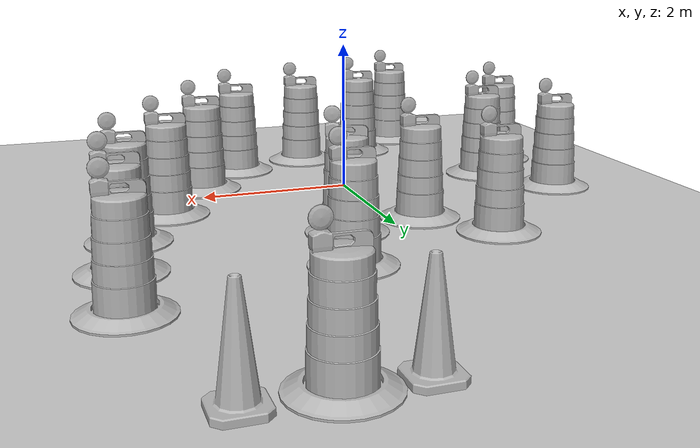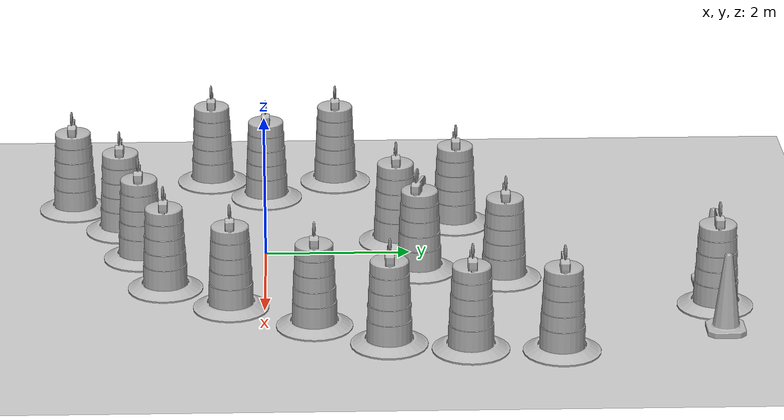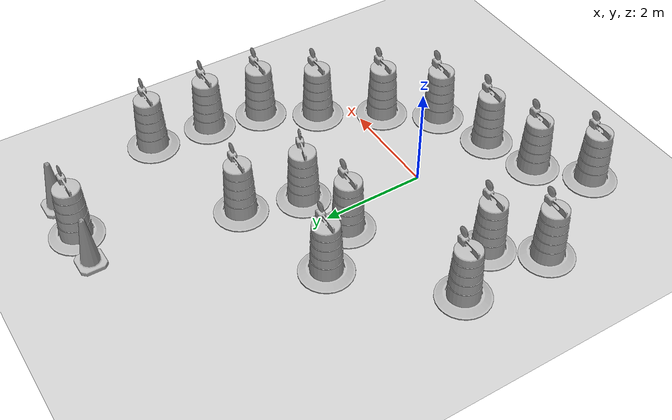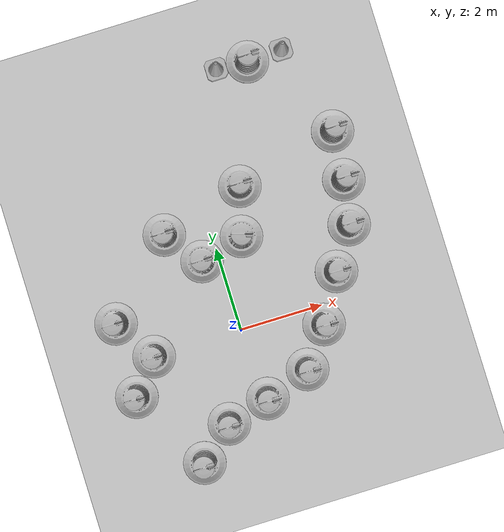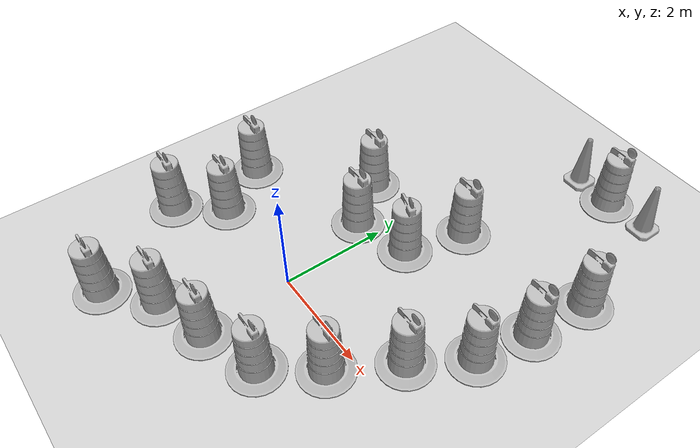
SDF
<sdf version="1.7">
 <world name="default">
  <light name="sun" type="directional">
   <pose>0 0 10 0 -0 0</pose>
   <diffuse>0.8 0.8 0.8 1</diffuse>
   <specular>0.2 0.2 0.2 1</specular>
   <attenuation>
    <range>1000</range>
    <constant>0.9</constant>
    <linear>0.01</linear>
    <quadratic>0.001</quadratic>
   </attenuation>
   <direction>-0.5 0.1 -0.9</direction>
   <spot><inner_angle>0</inner_angle><outer_angle>0</outer_angle><falloff>0</falloff></spot>
  </light>
  <model name="ground_plane">
   <static>1</static>
   <link name="link">
    <collision name="collision">
     <geometry><plane><normal>0 0 1</normal><size>100 100</size></plane></geometry>
     <surface>
      <contact><collide_bitmask>65535</collide_bitmask></contact>
      <friction><ode><mu>100</mu><mu2>50</mu2></ode></friction>
     </surface>
    </collision>
    <visual name="visual">
     <cast_shadows>0</cast_shadows>
     <geometry><plane><normal>0 0 1</normal><size>100 100</size></plane></geometry>
     <material>
      <script><uri>file://media/materials/scripts/gazebo.material</uri><name>Gazebo/Grey</name></script>
     </material>
    </visual>
   </link>
  </model>
  <gravity>0 0 -9.8</gravity>
  <magnetic_field>6e-06 2.3e-05 -4.2e-05</magnetic_field>
  <atmosphere type="adiabatic"/>
  <physics type="ode">
   <max_step_size>0.001</max_step_size>
   <real_time_factor>1</real_time_factor>
   <real_time_update_rate>1000</real_time_update_rate>
  </physics>
  <scene><ambient>0.4 0.4 0.4 1</ambient><background>0.7 0.7 0.7 1</background><shadows>1</shadows></scene>
  <spherical_coordinates>
   <surface_model>EARTH_WGS84</surface_model>
   <latitude_deg>0</latitude_deg>
   <longitude_deg>0</longitude_deg>
   <elevation>0</elevation>
   <heading_deg>0</heading_deg>
  </spherical_coordinates>
  <model name="Construction Barrel">
   <link name="link">
    <inertial>
     <pose>0 0 0.4 0 -0 0</pose>
     <mass>500</mass>
     <inertia><ixx>51.2096</ixx><iyy>51.2096</iyy><izz>25</izz><ixy>0</ixy><ixz>0</ixz><iyz>0</iyz></inertia>
    </inertial>
    <collision name="collision">
     <geometry><mesh><uri>model://construction_barrel/meshes/construction_barrel.dae</uri></mesh></geometry>
    </collision>
    <visual name="visual">
     <geometry><mesh><uri>model://construction_barrel/meshes/construction_barrel.dae</uri></mesh></geometry>
    </visual>
   </link>
   <pose>-0.913405 -2.02924 0 0 0 -4.4e-05</pose>
  </model>
  <model name="Construction Barrel_0">
   <link name="link">
    <inertial>
     <pose>0 0 0.4 0 -0 0</pose>
     <mass>500</mass>
     <inertia><ixx>51.2096</ixx><iyy>51.2096</iyy><izz>25</izz><ixy>0</ixy><ixz>0</ixz><iyz>0</iyz></inertia>
    </inertial>
    <collision name="collision">
     <geometry><mesh><uri>model://construction_barrel/meshes/construction_barrel.dae</uri></mesh></geometry>
    </collision>
    <visual name="visual">
     <geometry><mesh><uri>model://construction_barrel/meshes/construction_barrel.dae</uri></mesh></geometry>
    </visual>
   </link>
   <pose>0.126898 -1.72801 -0 0 -0 -4e-05</pose>
  </model>
  <model name="Construction Barrel_1">
   <link name="link">
    <inertial>
     <pose>0 0 0.4 0 -0 0</pose>
     <mass>500</mass>
     <inertia><ixx>51.2096</ixx><iyy>51.2096</iyy><izz>25</izz><ixy>0</ixy><ixz>0</ixz><iyz>0</iyz></inertia>
    </inertial>
    <collision name="collision">
     <geometry><mesh><uri>model://construction_barrel/meshes/construction_barrel.dae</uri></mesh></geometry>
    </collision>
    <visual name="visual">
     <geometry><mesh><uri>model://construction_barrel/meshes/construction_barrel.dae</uri></mesh></geometry>
    </visual>
   </link>
   <pose>1.22444 -1.35036 -0 0 -0 -3.6e-05</pose>
  </model>
  <model name="Construction Barrel_2">
   <link name="link">
    <inertial>
     <pose>0 0 0.4 0 -0 0</pose>
     <mass>500</mass>
     <inertia><ixx>51.2096</ixx><iyy>51.2096</iyy><izz>25</izz><ixy>0</ixy><ixz>0</ixz><iyz>0</iyz></inertia>
    </inertial>
    <collision name="collision">
     <geometry><mesh><uri>model://construction_barrel/meshes/construction_barrel.dae</uri></mesh></geometry>
    </collision>
    <visual name="visual">
     <geometry><mesh><uri>model://construction_barrel/meshes/construction_barrel.dae</uri></mesh></geometry>
    </visual>
   </link>
   <pose>1.90897 -0.453436 0 0 0 -4e-05</pose>
  </model>
  <model name="Construction Barrel_3">
   <link name="link">
    <inertial>
     <pose>0 0 0.4 0 -0 0</pose>
     <mass>500</mass>
     <inertia><ixx>51.2096</ixx><iyy>51.2096</iyy><izz>25</izz><ixy>0</ixy><ixz>0</ixz><iyz>0</iyz></inertia>
    </inertial>
    <collision name="collision">
     <geometry><mesh><uri>model://construction_barrel/meshes/construction_barrel.dae</uri></mesh></geometry>
    </collision>
    <visual name="visual">
     <geometry><mesh><uri>model://construction_barrel/meshes/construction_barrel.dae</uri></mesh></geometry>
    </visual>
   </link>
   <pose>2.56011 0.655896 -0 0 -0 -3.1e-05</pose>
  </model>
  <model name="Construction Barrel_4">
   <link name="link">
    <inertial>
     <pose>0 0 0.4 0 -0 0</pose>
     <mass>500</mass>
     <inertia><ixx>51.2096</ixx><iyy>51.2096</iyy><izz>25</izz><ixy>0</ixy><ixz>0</ixz><iyz>0</iyz></inertia>
    </inertial>
    <collision name="collision">
     <geometry><mesh><uri>model://construction_barrel/meshes/construction_barrel.dae</uri></mesh></geometry>
    </collision>
    <visual name="visual">
     <geometry><mesh><uri>model://construction_barrel/meshes/construction_barrel.dae</uri></mesh></geometry>
    </visual>
   </link>
   <pose>0.660644 2.10961 -1e-06 5e-06 -2e-06 -0.291034</pose>
  </model>
  <model name="Construction Barrel_5">
   <link name="link">
    <inertial>
     <pose>0 0 0.4 0 -0 0</pose>
     <mass>500</mass>
     <inertia><ixx>51.2096</ixx><iyy>51.2096</iyy><izz>25</izz><ixy>0</ixy><ixz>0</ixz><iyz>0</iyz></inertia>
    </inertial>
    <collision name="collision">
     <geometry><mesh><uri>model://construction_barrel/meshes/construction_barrel.dae</uri></mesh></geometry>
    </collision>
    <visual name="visual">
     <geometry><mesh><uri>model://construction_barrel/meshes/construction_barrel.dae</uri></mesh></geometry>
    </visual>
   </link>
   <pose>0.97355 3.25243 0 0 0 -0.010511</pose>
  </model>
  <model name="Construction Barrel_6">
   <link name="link">
    <inertial>
     <pose>0 0 0.4 0 -0 0</pose>
     <mass>500</mass>
     <inertia><ixx>51.2096</ixx><iyy>51.2096</iyy><izz>25</izz><ixy>0</ixy><ixz>0</ixz><iyz>0</iyz></inertia>
    </inertial>
    <collision name="collision">
     <geometry><mesh><uri>model://construction_barrel/meshes/construction_barrel.dae</uri></mesh></geometry>
    </collision>
    <visual name="visual">
     <geometry><mesh><uri>model://construction_barrel/meshes/construction_barrel.dae</uri></mesh></geometry>
    </visual>
   </link>
   <pose>-0.402901 1.81479 0 0 0 -3.1e-05</pose>
  </model>
  <model name="Construction Barrel_7">
   <link name="link">
    <inertial>
     <pose>0 0 0.4 0 -0 0</pose>
     <mass>500</mass>
     <inertia><ixx>51.2096</ixx><iyy>51.2096</iyy><izz>25</izz><ixy>0</ixy><ixz>0</ixz><iyz>0</iyz></inertia>
    </inertial>
    <collision name="collision">
     <geometry><mesh><uri>model://construction_barrel/meshes/construction_barrel.dae</uri></mesh></geometry>
    </collision>
    <visual name="visual">
     <geometry><mesh><uri>model://construction_barrel/meshes/construction_barrel.dae</uri></mesh></geometry>
    </visual>
   </link>
   <pose>-1.0709 2.67614 -2e-06 1e-06 8e-06 -3e-05</pose>
  </model>
  <model name="Construction Barrel_8">
   <link name="link">
    <inertial>
     <pose>0 0 0.4 0 -0 0</pose>
     <mass>500</mass>
     <inertia><ixx>51.2096</ixx><iyy>51.2096</iyy><izz>25</izz><ixy>0</ixy><ixz>0</ixz><iyz>0</iyz></inertia>
    </inertial>
    <collision name="collision">
     <geometry><mesh><uri>model://construction_barrel/meshes/construction_barrel.dae</uri></mesh></geometry>
    </collision>
    <visual name="visual">
     <geometry><mesh><uri>model://construction_barrel/meshes/construction_barrel.dae</uri></mesh></geometry>
    </visual>
   </link>
   <pose>-2.14319 0.004166 -0 0 -0 -3e-05</pose>
  </model>
  <model name="Construction Barrel_9">
   <link name="link">
    <inertial>
     <pose>0 0 0.4 0 -0 0</pose>
     <mass>500</mass>
     <inertia><ixx>51.2096</ixx><iyy>51.2096</iyy><izz>25</izz><ixy>0</ixy><ixz>0</ixz><iyz>0</iyz></inertia>
    </inertial>
    <collision name="collision">
     <geometry><mesh><uri>model://construction_barrel/meshes/construction_barrel.dae</uri></mesh></geometry>
    </collision>
    <visual name="visual">
     <geometry><mesh><uri>model://construction_barrel/meshes/construction_barrel.dae</uri></mesh></geometry>
    </visual>
   </link>
   <pose>-2.81116 -0.78687 1e-06 3e-06 2e-06 -2.6e-05</pose>
  </model>
  <model name="Construction Barrel_10">
   <link name="link">
    <inertial>
     <pose>0 0 0.4 0 -0 0</pose>
     <mass>500</mass>
     <inertia><ixx>51.2096</ixx><iyy>51.2096</iyy><izz>25</izz><ixy>0</ixy><ixz>0</ixz><iyz>0</iyz></inertia>
    </inertial>
    <collision name="collision">
     <geometry><mesh><uri>model://construction_barrel/meshes/construction_barrel.dae</uri></mesh></geometry>
    </collision>
    <visual name="visual">
     <geometry><mesh><uri>model://construction_barrel/meshes/construction_barrel.dae</uri></mesh></geometry>
    </visual>
   </link>
   <pose>-1.73888 -2.73811 -0 0 -0 -2.8e-05</pose>
  </model>
  <model name="Construction Barrel_11">
   <link name="link">
    <inertial>
     <pose>0 0 0.4 0 -0 0</pose>
     <mass>500</mass>
     <inertia><ixx>51.2096</ixx><iyy>51.2096</iyy><izz>25</izz><ixy>0</ixy><ixz>0</ixz><iyz>0</iyz></inertia>
    </inertial>
    <collision name="collision">
     <geometry><mesh><uri>model://construction_barrel/meshes/construction_barrel.dae</uri></mesh></geometry>
    </collision>
    <visual name="visual">
     <geometry><mesh><uri>model://construction_barrel/meshes/construction_barrel.dae</uri></mesh></geometry>
    </visual>
   </link>
   <pose>-2.77603 1.00616 -1e-06 2e-06 -2e-06 -2.3e-05</pose>
  </model>
  <model name="Construction Barrel_12">
   <link name="link">
    <inertial>
     <pose>0 0 0.4 0 -0 0</pose>
     <mass>500</mass>
     <inertia><ixx>51.2096</ixx><iyy>51.2096</iyy><izz>25</izz><ixy>0</ixy><ixz>0</ixz><iyz>0</iyz></inertia>
    </inertial>
    <collision name="collision">
     <geometry><mesh><uri>model://construction_barrel/meshes/construction_barrel.dae</uri></mesh></geometry>
    </collision>
    <visual name="visual">
     <geometry><mesh><uri>model://construction_barrel/meshes/construction_barrel.dae</uri></mesh></geometry>
    </visual>
   </link>
   <pose>3.17373 1.6228 -1e-06 0 5e-06 -1e-05</pose>
  </model>
  <model name="Construction Barrel_13">
   <link name="link">
    <inertial>
     <pose>0 0 0.4 0 -0 0</pose>
     <mass>500</mass>
     <inertia><ixx>51.2096</ixx><iyy>51.2096</iyy><izz>25</izz><ixy>0</ixy><ixz>0</ixz><iyz>0</iyz></inertia>
    </inertial>
    <collision name="collision">
     <geometry><mesh><uri>model://construction_barrel/meshes/construction_barrel.dae</uri></mesh></geometry>
    </collision>
    <visual name="visual">
     <geometry><mesh><uri>model://construction_barrel/meshes/construction_barrel.dae</uri></mesh></geometry>
    </visual>
   </link>
   <pose>3.36709 2.67678 -2e-06 -0 7e-06 -8e-06</pose>
  </model>
  <model name="Construction Barrel_14">
   <link name="link">
    <inertial>
     <pose>0 0 0.4 0 -0 0</pose>
     <mass>500</mass>
     <inertia><ixx>51.2096</ixx><iyy>51.2096</iyy><izz>25</izz><ixy>0</ixy><ixz>0</ixz><iyz>0</iyz></inertia>
    </inertial>
    <collision name="collision">
     <geometry><mesh><uri>model://construction_barrel/meshes/construction_barrel.dae</uri></mesh></geometry>
    </collision>
    <visual name="visual">
     <geometry><mesh><uri>model://construction_barrel/meshes/construction_barrel.dae</uri></mesh></geometry>
    </visual>
   </link>
   <pose>3.45499 3.85455 -1e-06 3e-06 1e-05 -7e-06</pose>
  </model>
  <model name="Construction Barrel_15">
   <link name="link">
    <inertial>
     <pose>0 0 0.4 0 -0 0</pose>
     <mass>500</mass>
     <inertia><ixx>51.2096</ixx><iyy>51.2096</iyy><izz>25</izz><ixy>0</ixy><ixz>0</ixz><iyz>0</iyz></inertia>
    </inertial>
    <collision name="collision">
     <geometry><mesh><uri>model://construction_barrel/meshes/construction_barrel.dae</uri></mesh></geometry>
    </collision>
    <visual name="visual">
     <geometry><mesh><uri>model://construction_barrel/meshes/construction_barrel.dae</uri></mesh></geometry>
    </visual>
   </link>
   <pose>2.01358 6.01673 -0 0 -0 -5.3e-05</pose>
  </model>
  <model name="Construction Cone">
   <link name="link">
    <collision name="collision">
     <geometry>
      <mesh><scale>10 10 10</scale><uri>model://construction_cone/meshes/construction_cone.dae</uri></mesh>
     </geometry>
    </collision>
    <visual name="visual">
     <geometry>
      <mesh><scale>10 10 10</scale><uri>model://construction_cone/meshes/construction_cone.dae</uri></mesh>
     </geometry>
    </visual>
    <inertial>
     <inertia><ixx>1</ixx><ixy>0</ixy><ixz>0</ixz><iyy>1</iyy><iyz>0</iyz><izz>1</izz></inertia>
     <mass>1</mass>
    </inertial>
   </link>
   <pose>2.86228 6.05685 -0 0 -0 0</pose>
  </model>
  <model name="Construction Cone_0">
   <link name="link">
    <collision name="collision">
     <geometry>
      <mesh><scale>10 10 10</scale><uri>model://construction_cone/meshes/construction_cone.dae</uri></mesh>
     </geometry>
    </collision>
    <visual name="visual">
     <geometry>
      <mesh><scale>10 10 10</scale><uri>model://construction_cone/meshes/construction_cone.dae</uri></mesh>
     </geometry>
    </visual>
    <inertial>
     <inertia><ixx>1</ixx><ixy>0</ixy><ixz>0</ixz><iyy>1</iyy><iyz>0</iyz><izz>1</izz></inertia>
     <mass>1</mass>
    </inertial>
   </link>
   <pose>1.2522 6.05696 -0 0 0 -0.00039</pose>
  </model>
 </world>
</sdf>
